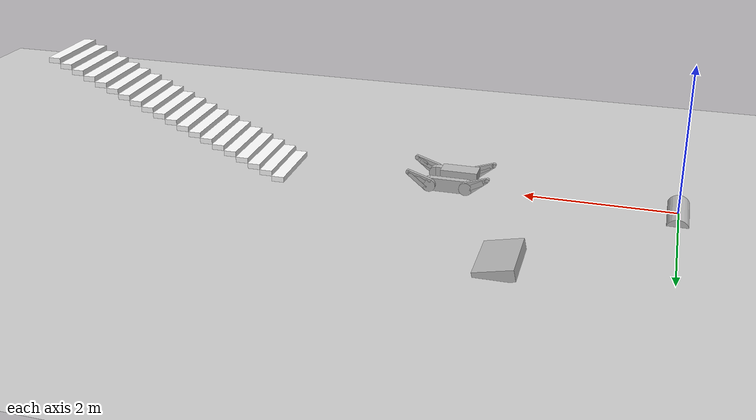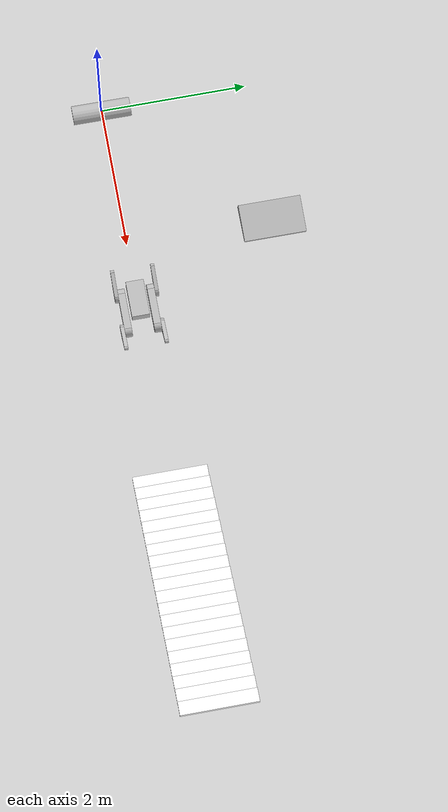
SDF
<sdf version="1.7">
 <world name="default">
  <physics name="4ms" type="ignored">
   <max_step_size>0.004</max_step_size>
   <real_time_factor>1.0</real_time_factor>
  </physics>
  <plugin name="gz::sim::systems::Physics" filename="gz-sim-physics-system"/>
  <plugin name="gz::sim::systems::UserCommands" filename="gz-sim-user-commands-system"/>
  <plugin name="gz::sim::systems::SceneBroadcaster" filename="gz-sim-scene-broadcaster-system"/>
  <scene><ambient>1 1 1 1</ambient><background>0.8 0.8 0.8 1</background><shadows>1</shadows></scene>
  <light name="sun" type="directional">
   <pose>0 0 10 0 0 0</pose>
   <diffuse>0.8 0.8 0.8 1</diffuse>
   <specular>0.8 0.8 0.8 1</specular>
   <attenuation>
    <range>1000</range>
    <constant>0.9</constant>
    <linear>0.01</linear>
    <quadratic>0.001</quadratic>
   </attenuation>
   <direction>-0.5 0.1 -0.9</direction>
  </light>
  <model name="ground_plane">
   <static>1</static>
   <link name="link">
    <collision name="collision">
     <geometry><plane><normal>0 0 1</normal><size>100 100</size></plane></geometry>
    </collision>
    <visual name="visual">
     <geometry><plane><normal>0 0 1</normal><size>100 100</size></plane></geometry>
     <material>
      <ambient>0.8 0.8 0.8 1</ambient>
      <diffuse>0.8 0.8 0.8 1</diffuse>
      <specular>0.8 0.8 0.8 1</specular>
     </material>
    </visual>
   </link>
  </model>
  <model name="simple_tracked">
   <pose>3 0 0.1 0 0 0</pose>
   <link name="base_link">
    <inertial>
     <pose>-0.122 0 0.118 1.5708 0 0</pose>
     <mass>13.14</mass>
     <inertia>
      <ixx>0.10019</ixx>
      <ixy>0</ixy>
      <ixz>0</ixz>
      <iyy>0.345043</iyy>
      <iyz>0</iyz>
      <izz>0.302044</izz>
     </inertia>
    </inertial>
    <collision name="base_link_collision">
     <pose>-0.122 0 0.118 0 0 0</pose>
     <geometry><box><size>0.50017 0.24093 0.139</size></box></geometry>
    </collision>
    <visual name="base_link_visual">
     <pose>-0.122 0 0.118 0 0 0</pose>
     <geometry><box><size>0.50017 0.24093 0.139</size></box></geometry>
    </visual>
   </link>
   <link name="left_track">
    <pose>0 0.1985 0 0 0 0</pose>
    <inertial>
     <pose>0 0 0.0141 0 0 0</pose>
     <mass>6.06</mass>
     <inertia>
      <ixx>0.002731</ixx>
      <ixy>0</ixy>
      <ixz>0</ixz>
      <iyy>0.032554</iyy>
      <iyz>1.5e-05</iyz>
      <izz>0.031391</izz>
     </inertia>
    </inertial>
    <collision name="left_track_collision">
     <pose>0 0 0.01855 1.5708 0 1.5708</pose>
     <geometry><box><size>0.09728 0.18094 0.5</size></box></geometry>
     <surface><friction><ode><mu>0.7</mu><mu2>150</mu2><fdir1>0 1 0</fdir1></ode></friction></surface>
    </collision>
    <collision name="left_track_collision_1">
     <pose>0.25 0 0.01855 1.5708 0 0</pose>
     <geometry><cylinder><length>0.09728</length><radius>0.09047</radius></cylinder></geometry>
     <surface><friction><ode><mu>0.7</mu><mu2>150</mu2><fdir1>0 1 0</fdir1></ode></friction></surface>
    </collision>
    <collision name="left_track_collision_2">
     <pose>-0.25 0 0.01855 1.5708 0 0</pose>
     <geometry><cylinder><length>0.09728</length><radius>0.09047</radius></cylinder></geometry>
     <surface><friction><ode><mu>0.7</mu><mu2>150</mu2><fdir1>0 1 0</fdir1></ode></friction></surface>
    </collision>
    <visual name="left_track_visual">
     <pose>0 0 0.01855 1.5708 0 1.5708</pose>
     <geometry><box><size>0.09728 0.18094 0.5</size></box></geometry>
    </visual>
    <visual name="left_track_visual_1">
     <pose>0.25 0 0.01855 1.5708 0 0</pose>
     <geometry><cylinder><length>0.09728</length><radius>0.09047</radius></cylinder></geometry>
    </visual>
    <visual name="left_track_visual_2">
     <pose>-0.25 0 0.01855 1.5708 0 0</pose>
     <geometry><cylinder><length>0.09728</length><radius>0.09047</radius></cylinder></geometry>
    </visual>
   </link>
   <joint name="left_track_j" type="fixed"><child>left_track</child><parent>base_link</parent></joint>
   <link name="right_track">
    <pose>0 -0.1985 0 0 0 0</pose>
    <inertial>
     <pose>0 0 0.0141 0 0 0</pose>
     <mass>6.06</mass>
     <inertia>
      <ixx>0.002731</ixx>
      <ixy>0</ixy>
      <ixz>0</ixz>
      <iyy>0.032554</iyy>
      <iyz>1.5e-05</iyz>
      <izz>0.031391</izz>
     </inertia>
    </inertial>
    <collision name="right_track_collision">
     <pose>0 0 0.01855 1.5708 0 1.5708</pose>
     <geometry><box><size>0.09728 0.18094 0.5</size></box></geometry>
     <surface><friction><ode><mu>0.7</mu><mu2>150</mu2><fdir1>0 1 0</fdir1></ode></friction></surface>
    </collision>
    <collision name="right_track_collision_1">
     <pose>0.25 0 0.01855 1.5708 0 0</pose>
     <geometry><cylinder><length>0.09728</length><radius>0.09047</radius></cylinder></geometry>
     <surface><friction><ode><mu>0.7</mu><mu2>150</mu2><fdir1>0 1 0</fdir1></ode></friction></surface>
    </collision>
    <collision name="right_track_collision_2">
     <pose>-0.25 0 0.01855 1.5708 0 0</pose>
     <geometry><cylinder><length>0.09728</length><radius>0.09047</radius></cylinder></geometry>
     <surface><friction><ode><mu>0.7</mu><mu2>150</mu2><fdir1>0 1 0</fdir1></ode></friction></surface>
    </collision>
    <visual name="right_track_visual">
     <pose>0 0 0.01855 1.5708 0 1.5708</pose>
     <geometry><box><size>0.09728 0.18094 0.5</size></box></geometry>
    </visual>
    <visual name="right_track_visual_1">
     <pose>0.25 0 0.01855 1.5708 0 0</pose>
     <geometry><cylinder><length>0.09728</length><radius>0.09047</radius></cylinder></geometry>
    </visual>
    <visual name="right_track_visual_2">
     <pose>-0.25 0 0.01855 1.5708 0 0</pose>
     <geometry><cylinder><length>0.09728</length><radius>0.09047</radius></cylinder></geometry>
    </visual>
   </link>
   <joint name="right_track_j" type="fixed"><child>right_track</child><parent>base_link</parent></joint>
   <link name="front_left_flipper">
    <pose>0.25 0.272 0.0195 0 -0.5 0</pose>
    <inertial>
     <pose>0.08 0 0 0 0 0</pose>
     <mass>0.75</mass>
     <inertia>
      <ixx>0.0017491</ixx>
      <ixy>2.8512e-07</ixy>
      <ixz>0.0018277</ixz>
      <iyy>0.012277</iyy>
      <iyz>-3.6288e-07</iyz>
      <izz>0.010941</izz>
     </inertia>
    </inertial>
    <collision name="front_left_flipper_collision_large_wheel_collision">
     <pose>0 0 0 1.5708 0 0</pose>
     <geometry><cylinder><length>0.04981</length><radius>0.089</radius></cylinder></geometry>
     <surface><friction><ode><mu>0.7</mu><mu2>150</mu2><fdir1>0 1 0</fdir1></ode></friction></surface>
     <max_contacts>20</max_contacts>
    </collision>
    <collision name="front_left_flipper_collision_small_wheel_collision_1">
     <pose>0.33 0 0 1.5708 0 0</pose>
     <geometry><cylinder><length>0.04981</length><radius>0.029</radius></cylinder></geometry>
     <surface><friction><ode><mu>0.7</mu><mu2>150</mu2><fdir1>0 1 0</fdir1></ode></friction></surface>
     <max_contacts>20</max_contacts>
    </collision>
    <collision name="front_left_flipper_collision_top_bar_collision_2">
     <pose>0.165 0 0.0325 0 0.184162 0</pose>
     <geometry><box><size>0.33 0.04981 0.055</size></box></geometry>
     <surface><friction><ode><mu>0.7</mu><mu2>150</mu2><fdir1>0 1 0</fdir1></ode></friction></surface>
     <max_contacts>20</max_contacts>
    </collision>
    <collision name="front_left_flipper_collision_bottom_bar_collision_3">
     <pose>0.165 0 -0.0325 0 -0.184162 0</pose>
     <geometry><box><size>0.33 0.04981 0.055</size></box></geometry>
     <surface><friction><ode><mu>0.7</mu><mu2>150</mu2><fdir1>0 1 0</fdir1></ode></friction></surface>
     <max_contacts>20</max_contacts>
    </collision>
    <collision name="front_left_flipper_collision_middle_bar_collision_4">
     <pose>0.166 0 0.004 0 -0.02 0</pose>
     <geometry><box><size>0.2 0.04981 0.07</size></box></geometry>
     <surface><friction><ode><mu>0.7</mu><mu2>150</mu2><fdir1>0 1 0</fdir1></ode></friction></surface>
     <max_contacts>20</max_contacts>
    </collision>
    <visual name="front_left_flipper_visual_large_wheel_visual">
     <pose>0 0 0 1.5708 0 0</pose>
     <geometry><cylinder><length>0.04981</length><radius>0.089</radius></cylinder></geometry>
    </visual>
    <visual name="front_left_flipper_visual_small_wheel_visual_1">
     <pose>0.33 0 0 1.5708 0 0</pose>
     <geometry><cylinder><length>0.04981</length><radius>0.029</radius></cylinder></geometry>
    </visual>
    <visual name="front_left_flipper_visual_top_bar_visual_2">
     <pose>0.165 0 0.0325 0 0.184162 0</pose>
     <geometry><box><size>0.33 0.04981 0.055</size></box></geometry>
    </visual>
    <visual name="front_left_flipper_visual_bottom_bar_visual_3">
     <pose>0.165 0 -0.0325 0 -0.184162 0</pose>
     <geometry><box><size>0.33 0.04981 0.055</size></box></geometry>
    </visual>
    <visual name="front_left_flipper_visual_middle_bar_visual_4">
     <pose>0.166 0 0.004 0 -0.02 0</pose>
     <geometry><box><size>0.2 0.04981 0.07</size></box></geometry>
    </visual>
    <self_collide>1</self_collide>
   </link>
   <joint name="front_left_flipper_j" type="revolute">
    <child>front_left_flipper</child>
    <parent>left_track</parent>
    <axis>
     <xyz expressed_in="__model__">0 1 0</xyz>
     <limit><lower>0</lower><upper>0</upper></limit>
     <dynamics><spring_reference>0</spring_reference><spring_stiffness>0</spring_stiffness></dynamics>
    </axis>
    <physics>
     <ode>
      <implicit_spring_damper>1</implicit_spring_damper>
      <cfm_damping>1</cfm_damping>
      <limit><cfm>0</cfm><erp>0.2</erp></limit>
     </ode>
    </physics>
   </joint>
   <link name="rear_left_flipper">
    <pose>-0.25 0.272 0.0195 3.14159 -0.5 3.14159</pose>
    <inertial>
     <pose>0.08 0 0 0 0 0</pose>
     <mass>0.75</mass>
     <inertia>
      <ixx>0.0017491</ixx>
      <ixy>2.8512e-07</ixy>
      <ixz>0.0018277</ixz>
      <iyy>0.012277</iyy>
      <iyz>-3.6288e-07</iyz>
      <izz>0.010941</izz>
     </inertia>
    </inertial>
    <collision name="rear_left_flipper_collision_large_wheel_collision">
     <pose>0 0 0 1.5708 0 0</pose>
     <geometry><cylinder><length>0.04981</length><radius>0.089</radius></cylinder></geometry>
     <surface><friction><ode><mu>0.7</mu><mu2>150</mu2><fdir1>0 1 0</fdir1></ode></friction></surface>
     <max_contacts>20</max_contacts>
    </collision>
    <collision name="rear_left_flipper_collision_small_wheel_collision_1">
     <pose>0.33 0 0 1.5708 0 0</pose>
     <geometry><cylinder><length>0.04981</length><radius>0.029</radius></cylinder></geometry>
     <surface><friction><ode><mu>0.7</mu><mu2>150</mu2><fdir1>0 1 0</fdir1></ode></friction></surface>
     <max_contacts>20</max_contacts>
    </collision>
    <collision name="rear_left_flipper_collision_top_bar_collision_2">
     <pose>0.165 0 0.0325 0 0.184162 0</pose>
     <geometry><box><size>0.33 0.04981 0.055</size></box></geometry>
     <surface><friction><ode><mu>0.7</mu><mu2>150</mu2><fdir1>0 1 0</fdir1></ode></friction></surface>
     <max_contacts>20</max_contacts>
    </collision>
    <collision name="rear_left_flipper_collision_bottom_bar_collision_3">
     <pose>0.165 0 -0.0325 0 -0.184162 0</pose>
     <geometry><box><size>0.33 0.04981 0.055</size></box></geometry>
     <surface><friction><ode><mu>0.7</mu><mu2>150</mu2><fdir1>0 1 0</fdir1></ode></friction></surface>
     <max_contacts>20</max_contacts>
    </collision>
    <collision name="rear_left_flipper_collision_middle_bar_collision_4">
     <pose>0.166 0 0.004 0 -0.02 0</pose>
     <geometry><box><size>0.2 0.04981 0.07</size></box></geometry>
     <surface><friction><ode><mu>0.7</mu><mu2>150</mu2><fdir1>0 1 0</fdir1></ode></friction></surface>
     <max_contacts>20</max_contacts>
    </collision>
    <visual name="rear_left_flipper_visual_large_wheel_visual">
     <pose>0 0 0 1.5708 0 0</pose>
     <geometry><cylinder><length>0.04981</length><radius>0.089</radius></cylinder></geometry>
    </visual>
    <visual name="rear_left_flipper_visual_small_wheel_visual_1">
     <pose>0.33 0 0 1.5708 0 0</pose>
     <geometry><cylinder><length>0.04981</length><radius>0.029</radius></cylinder></geometry>
    </visual>
    <visual name="rear_left_flipper_visual_top_bar_visual_2">
     <pose>0.165 0 0.0325 0 0.184162 0</pose>
     <geometry><box><size>0.33 0.04981 0.055</size></box></geometry>
    </visual>
    <visual name="rear_left_flipper_visual_bottom_bar_visual_3">
     <pose>0.165 0 -0.0325 0 -0.184162 0</pose>
     <geometry><box><size>0.33 0.04981 0.055</size></box></geometry>
    </visual>
    <visual name="rear_left_flipper_visual_middle_bar_visual_4">
     <pose>0.166 0 0.004 0 -0.02 0</pose>
     <geometry><box><size>0.2 0.04981 0.07</size></box></geometry>
    </visual>
    <self_collide>1</self_collide>
   </link>
   <joint name="rear_left_flipper_j" type="revolute">
    <child>rear_left_flipper</child>
    <parent>left_track</parent>
    <axis>
     <xyz expressed_in="__model__">0 1 0</xyz>
     <limit><lower>0</lower><upper>0</upper></limit>
     <dynamics><spring_reference>0</spring_reference><spring_stiffness>0</spring_stiffness></dynamics>
    </axis>
    <physics>
     <ode>
      <implicit_spring_damper>1</implicit_spring_damper>
      <cfm_damping>1</cfm_damping>
      <limit><cfm>0</cfm><erp>0.2</erp></limit>
     </ode>
    </physics>
   </joint>
   <link name="front_right_flipper">
    <pose>0.25 -0.272 0.0195 3.14159 0.5 3.14159</pose>
    <inertial>
     <pose>-0.08 0 0 0 0 0</pose>
     <mass>0.75</mass>
     <inertia>
      <ixx>0.0017491</ixx>
      <ixy>2.8512e-07</ixy>
      <ixz>0.0018277</ixz>
      <iyy>0.012277</iyy>
      <iyz>-3.6288e-07</iyz>
      <izz>0.010941</izz>
     </inertia>
    </inertial>
    <collision name="front_right_flipper_collision_large_wheel_collision">
     <pose>0 0 0 1.5708 0 0</pose>
     <geometry><cylinder><length>0.04981</length><radius>0.089</radius></cylinder></geometry>
     <surface><friction><ode><mu>0.7</mu><mu2>150</mu2><fdir1>0 1 0</fdir1></ode></friction></surface>
     <max_contacts>20</max_contacts>
    </collision>
    <collision name="front_right_flipper_collision_small_wheel_collision_1">
     <pose>-0.33 0 0 1.5708 0 0</pose>
     <geometry><cylinder><length>0.04981</length><radius>0.029</radius></cylinder></geometry>
     <surface><friction><ode><mu>0.7</mu><mu2>150</mu2><fdir1>0 1 0</fdir1></ode></friction></surface>
     <max_contacts>20</max_contacts>
    </collision>
    <collision name="front_right_flipper_collision_top_bar_collision_2">
     <pose>-0.165 0 0.0325 0 0.184162 -3.14159</pose>
     <geometry><box><size>0.33 0.04981 0.055</size></box></geometry>
     <surface><friction><ode><mu>0.7</mu><mu2>150</mu2><fdir1>0 1 0</fdir1></ode></friction></surface>
     <max_contacts>20</max_contacts>
    </collision>
    <collision name="front_right_flipper_collision_bottom_bar_collision_3">
     <pose>-0.165 0 -0.0325 0 -0.184162 -3.14159</pose>
     <geometry><box><size>0.33 0.04981 0.055</size></box></geometry>
     <surface><friction><ode><mu>0.7</mu><mu2>150</mu2><fdir1>0 1 0</fdir1></ode></friction></surface>
     <max_contacts>20</max_contacts>
    </collision>
    <collision name="front_right_flipper_collision_middle_bar_collision_4">
     <pose>-0.166 0 0.004 0 -0.02 -3.14159</pose>
     <geometry><box><size>0.2 0.04981 0.07</size></box></geometry>
     <surface><friction><ode><mu>0.7</mu><mu2>150</mu2><fdir1>0 1 0</fdir1></ode></friction></surface>
     <max_contacts>20</max_contacts>
    </collision>
    <visual name="front_right_flipper_visual_large_wheel_visual">
     <pose>0 0 0 1.5708 0 0</pose>
     <geometry><cylinder><length>0.04981</length><radius>0.089</radius></cylinder></geometry>
    </visual>
    <visual name="front_right_flipper_visual_small_wheel_visual_1">
     <pose>-0.33 0 0 1.5708 0 0</pose>
     <geometry><cylinder><length>0.04981</length><radius>0.029</radius></cylinder></geometry>
    </visual>
    <visual name="front_right_flipper_visual_top_bar_visual_2">
     <pose>-0.165 0 0.0325 0 0.184162 -3.14159</pose>
     <geometry><box><size>0.33 0.04981 0.055</size></box></geometry>
    </visual>
    <visual name="front_right_flipper_visual_bottom_bar_visual_3">
     <pose>-0.165 0 -0.0325 0 -0.184162 -3.14159</pose>
     <geometry><box><size>0.33 0.04981 0.055</size></box></geometry>
    </visual>
    <visual name="front_right_flipper_visual_middle_bar_visual_4">
     <pose>-0.166 0 0.004 0 -0.02 -3.14159</pose>
     <geometry><box><size>0.2 0.04981 0.07</size></box></geometry>
    </visual>
    <self_collide>1</self_collide>
   </link>
   <joint name="front_right_flipper_j" type="revolute">
    <child>front_right_flipper</child>
    <parent>right_track</parent>
    <axis>
     <xyz expressed_in="__model__">0 1 0</xyz>
     <limit><lower>0</lower><upper>0</upper></limit>
     <dynamics><spring_reference>0</spring_reference><spring_stiffness>0</spring_stiffness></dynamics>
    </axis>
    <physics>
     <ode>
      <implicit_spring_damper>1</implicit_spring_damper>
      <cfm_damping>1</cfm_damping>
      <limit><cfm>0</cfm><erp>0.2</erp></limit>
     </ode>
    </physics>
   </joint>
   <link name="rear_right_flipper">
    <pose>-0.25 -0.272 0.0195 0 0.5 0</pose>
    <inertial>
     <pose>-0.08 0 0 0 0 0</pose>
     <mass>0.75</mass>
     <inertia>
      <ixx>0.0017491</ixx>
      <ixy>2.8512e-07</ixy>
      <ixz>0.0018277</ixz>
      <iyy>0.012277</iyy>
      <iyz>-3.6288e-07</iyz>
      <izz>0.010941</izz>
     </inertia>
    </inertial>
    <collision name="rear_right_flipper_collision_large_wheel_collision">
     <pose>0 0 0 1.5708 0 0</pose>
     <geometry><cylinder><length>0.04981</length><radius>0.089</radius></cylinder></geometry>
     <surface><friction><ode><mu>0.7</mu><mu2>150</mu2><fdir1>0 1 0</fdir1></ode></friction></surface>
     <max_contacts>20</max_contacts>
    </collision>
    <collision name="rear_right_flipper_collision_small_wheel_collision_1">
     <pose>-0.33 0 0 1.5708 0 0</pose>
     <geometry><cylinder><length>0.04981</length><radius>0.029</radius></cylinder></geometry>
     <surface><friction><ode><mu>0.7</mu><mu2>150</mu2><fdir1>0 1 0</fdir1></ode></friction></surface>
     <max_contacts>20</max_contacts>
    </collision>
    <collision name="rear_right_flipper_collision_top_bar_collision_2">
     <pose>-0.165 0 0.0325 0 0.184162 -3.14159</pose>
     <geometry><box><size>0.33 0.04981 0.055</size></box></geometry>
     <surface><friction><ode><mu>0.7</mu><mu2>150</mu2><fdir1>0 1 0</fdir1></ode></friction></surface>
     <max_contacts>20</max_contacts>
    </collision>
    <collision name="rear_right_flipper_collision_bottom_bar_collision_3">
     <pose>-0.165 0 -0.0325 0 -0.184162 -3.14159</pose>
     <geometry><box><size>0.33 0.04981 0.055</size></box></geometry>
     <surface><friction><ode><mu>0.7</mu><mu2>150</mu2><fdir1>0 1 0</fdir1></ode></friction></surface>
     <max_contacts>20</max_contacts>
    </collision>
    <collision name="rear_right_flipper_collision_middle_bar_collision_4">
     <pose>-0.166 0 0.004 0 -0.02 -3.14159</pose>
     <geometry><box><size>0.2 0.04981 0.07</size></box></geometry>
     <surface><friction><ode><mu>0.7</mu><mu2>150</mu2><fdir1>0 1 0</fdir1></ode></friction></surface>
     <max_contacts>20</max_contacts>
    </collision>
    <visual name="rear_right_flipper_visual_large_wheel_visual">
     <pose>0 0 0 1.5708 0 0</pose>
     <geometry><cylinder><length>0.04981</length><radius>0.089</radius></cylinder></geometry>
    </visual>
    <visual name="rear_right_flipper_visual_small_wheel_visual_1">
     <pose>-0.33 0 0 1.5708 0 0</pose>
     <geometry><cylinder><length>0.04981</length><radius>0.029</radius></cylinder></geometry>
    </visual>
    <visual name="rear_right_flipper_visual_top_bar_visual_2">
     <pose>-0.165 0 0.0325 0 0.184162 -3.14159</pose>
     <geometry><box><size>0.33 0.04981 0.055</size></box></geometry>
    </visual>
    <visual name="rear_right_flipper_visual_bottom_bar_visual_3">
     <pose>-0.165 0 -0.0325 0 -0.184162 -3.14159</pose>
     <geometry><box><size>0.33 0.04981 0.055</size></box></geometry>
    </visual>
    <visual name="rear_right_flipper_visual_middle_bar_visual_4">
     <pose>-0.166 0 0.004 0 -0.02 -3.14159</pose>
     <geometry><box><size>0.2 0.04981 0.07</size></box></geometry>
    </visual>
    <self_collide>1</self_collide>
   </link>
   <joint name="rear_right_flipper_j" type="revolute">
    <child>rear_right_flipper</child>
    <parent>right_track</parent>
    <axis>
     <xyz expressed_in="__model__">0 1 0</xyz>
     <limit><lower>0</lower><upper>0</upper></limit>
     <dynamics><spring_reference>0</spring_reference><spring_stiffness>0</spring_stiffness></dynamics>
    </axis>
    <physics>
     <ode>
      <implicit_spring_damper>1</implicit_spring_damper>
      <cfm_damping>1</cfm_damping>
      <limit><cfm>0</cfm><erp>0.2</erp></limit>
     </ode>
    </physics>
   </joint>
   <plugin name="gz::sim::systems::TrackedVehicle" filename="gz-sim-tracked-vehicle-system">
    <left_track><link>left_track</link></left_track>
    <left_track><link>front_left_flipper</link></left_track>
    <left_track><link>rear_left_flipper</link></left_track>
    <right_track><link>right_track</link></right_track>
    <right_track><link>front_right_flipper</link></right_track>
    <right_track><link>rear_right_flipper</link></right_track>
    <tracks_separation>0.4</tracks_separation>
    <track_height>0.18094</track_height>
    <steering_efficiency>0.5</steering_efficiency>
   </plugin>
   <plugin name="gz::sim::systems::TrackController" filename="gz-sim-track-controller-system">
    <link>left_track</link>
    <min_velocity>-1.0</min_velocity>
    <max_velocity>1.0</max_velocity>
   </plugin>
   <plugin name="gz::sim::systems::TrackController" filename="gz-sim-track-controller-system">
    <link>right_track</link>
    <min_velocity>-1.0</min_velocity>
    <max_velocity>1.0</max_velocity>
   </plugin>
   <plugin name="gz::sim::systems::TrackController" filename="gz-sim-track-controller-system">
    <link>front_left_flipper</link>
    <min_velocity>-1.0</min_velocity>
    <max_velocity>1.0</max_velocity>
   </plugin>
   <plugin name="gz::sim::systems::TrackController" filename="gz-sim-track-controller-system">
    <link>rear_left_flipper</link>
    <min_velocity>-1.0</min_velocity>
    <max_velocity>1.0</max_velocity>
   </plugin>
   <plugin name="gz::sim::systems::TrackController" filename="gz-sim-track-controller-system">
    <link>front_right_flipper</link>
    <min_velocity>-1.0</min_velocity>
    <max_velocity>1.0</max_velocity>
   </plugin>
   <plugin name="gz::sim::systems::TrackController" filename="gz-sim-track-controller-system">
    <link>rear_right_flipper</link>
    <min_velocity>-1.0</min_velocity>
    <max_velocity>1.0</max_velocity>
   </plugin>
   <plugin filename="gz-sim-triggered-publisher-system" name="gz::sim::systems::TriggeredPublisher">
    <input type="gz.msgs.Int32" topic="/keyboard/keypress"><match field="data">87</match></input>
    <output type="gz.msgs.Twist" topic="/model/simple_tracked/cmd_vel">linear: {x: 1.0}, angular: {z: 0.0}</output>
   </plugin>
   <plugin filename="gz-sim-triggered-publisher-system" name="gz::sim::systems::TriggeredPublisher">
    <input type="gz.msgs.Int32" topic="/keyboard/keypress"><match field="data">88</match></input>
    <output type="gz.msgs.Twist" topic="/model/simple_tracked/cmd_vel">linear: {x: -1.0}, angular: {z: 0.0}</output>
   </plugin>
   <plugin filename="gz-sim-triggered-publisher-system" name="gz::sim::systems::TriggeredPublisher">
    <input type="gz.msgs.Int32" topic="/keyboard/keypress"><match field="data">83</match></input>
    <output type="gz.msgs.Twist" topic="/model/simple_tracked/cmd_vel">linear: {x: 0.0}, angular: {z: 0.0}</output>
   </plugin>
   <plugin filename="gz-sim-triggered-publisher-system" name="gz::sim::systems::TriggeredPublisher">
    <input type="gz.msgs.Int32" topic="/keyboard/keypress"><match field="data">65</match></input>
    <output type="gz.msgs.Twist" topic="/model/simple_tracked/cmd_vel">linear: {x: 0.0}, angular: {z: 1.0}</output>
   </plugin>
   <plugin filename="gz-sim-triggered-publisher-system" name="gz::sim::systems::TriggeredPublisher">
    <input type="gz.msgs.Int32" topic="/keyboard/keypress"><match field="data">68</match></input>
    <output type="gz.msgs.Twist" topic="/model/simple_tracked/cmd_vel">linear: {x: 0.0}, angular: {z: -1.0}</output>
   </plugin>
   <plugin filename="gz-sim-triggered-publisher-system" name="gz::sim::systems::TriggeredPublisher">
    <input type="gz.msgs.Int32" topic="/keyboard/keypress"><match field="data">81</match></input>
    <output type="gz.msgs.Twist" topic="/model/simple_tracked/cmd_vel">linear: {x: 1.0}, angular: {z: 1.0}</output>
   </plugin>
   <plugin filename="gz-sim-triggered-publisher-system" name="gz::sim::systems::TriggeredPublisher">
    <input type="gz.msgs.Int32" topic="/keyboard/keypress"><match field="data">69</match></input>
    <output type="gz.msgs.Twist" topic="/model/simple_tracked/cmd_vel">linear: {x: 1.0}, angular: {z: -1.0}</output>
   </plugin>
   <plugin filename="gz-sim-triggered-publisher-system" name="gz::sim::systems::TriggeredPublisher">
    <input type="gz.msgs.Int32" topic="/keyboard/keypress"><match field="data">90</match></input>
    <output type="gz.msgs.Twist" topic="/model/simple_tracked/cmd_vel">linear: {x: -1.0}, angular: {z: 1.0}</output>
   </plugin>
   <plugin filename="gz-sim-triggered-publisher-system" name="gz::sim::systems::TriggeredPublisher">
    <input type="gz.msgs.Int32" topic="/keyboard/keypress"><match field="data">67</match></input>
    <output type="gz.msgs.Twist" topic="/model/simple_tracked/cmd_vel">linear: {x: -1.0}, angular: {z: -1.0}</output>
   </plugin>
  </model>
  <model name="stairs_very_simple">
   <pose>7 0 0 0 0 1.5708</pose>
   <link name="Stairs_3">
    <visual name="Stairs_3_Visual_0">
     <pose>0 1.6625 0.0375 0 0 0</pose>
     <geometry><box><size>1 0.175 0.075</size></box></geometry>
     <material><ambient>1 1 1 1</ambient></material>
     <meta><layer>0</layer></meta>
    </visual>
    <collision name="Stairs_3_Collision_0">
     <geometry><box><size>1 0.175 0.075</size></box></geometry>
     <pose>0 1.6625 0.0375 0 0 0</pose>
    </collision>
    <visual name="Stairs_3_Visual_1">
     <pose>0 1.4875 0.1125 0 0 0</pose>
     <geometry><box><size>1 0.175 0.075</size></box></geometry>
     <material><ambient>1 1 1 1</ambient></material>
     <meta><layer>0</layer></meta>
    </visual>
    <collision name="Stairs_3_Collision_1">
     <geometry><box><size>1 0.175 0.075</size></box></geometry>
     <pose>0 1.4875 0.1125 0 0 0</pose>
    </collision>
    <visual name="Stairs_3_Visual_2">
     <pose>0 1.3125 0.1875 0 0 0</pose>
     <geometry><box><size>1 0.175 0.075</size></box></geometry>
     <material><ambient>1 1 1 1</ambient></material>
     <meta><layer>0</layer></meta>
    </visual>
    <collision name="Stairs_3_Collision_2">
     <geometry><box><size>1 0.175 0.075</size></box></geometry>
     <pose>0 1.3125 0.1875 0 0 0</pose>
    </collision>
    <visual name="Stairs_3_Visual_3">
     <pose>0 1.1375 0.2625 0 0 0</pose>
     <geometry><box><size>1 0.175 0.075</size></box></geometry>
     <material><ambient>1 1 1 1</ambient></material>
     <meta><layer>0</layer></meta>
    </visual>
    <collision name="Stairs_3_Collision_3">
     <geometry><box><size>1 0.175 0.075</size></box></geometry>
     <pose>0 1.1375 0.2625 0 0 0</pose>
    </collision>
    <visual name="Stairs_3_Visual_4">
     <pose>0 0.9625 0.3375 0 0 0</pose>
     <geometry><box><size>1 0.175 0.075</size></box></geometry>
     <material><ambient>1 1 1 1</ambient></material>
     <meta><layer>0</layer></meta>
    </visual>
    <collision name="Stairs_3_Collision_4">
     <geometry><box><size>1 0.175 0.075</size></box></geometry>
     <pose>0 0.9625 0.3375 0 0 0</pose>
    </collision>
    <visual name="Stairs_3_Visual_5">
     <pose>0 0.7875 0.4125 0 0 0</pose>
     <geometry><box><size>1 0.175 0.075</size></box></geometry>
     <material><ambient>1 1 1 1</ambient></material>
     <meta><layer>0</layer></meta>
    </visual>
    <collision name="Stairs_3_Collision_5">
     <geometry><box><size>1 0.175 0.075</size></box></geometry>
     <pose>0 0.7875 0.4125 0 0 0</pose>
    </collision>
    <visual name="Stairs_3_Visual_6">
     <pose>0 0.6125 0.4875 0 0 0</pose>
     <geometry><box><size>1 0.175 0.075</size></box></geometry>
     <material><ambient>1 1 1 1</ambient></material>
     <meta><layer>0</layer></meta>
    </visual>
    <collision name="Stairs_3_Collision_6">
     <geometry><box><size>1 0.175 0.075</size></box></geometry>
     <pose>0 0.6125 0.4875 0 0 0</pose>
    </collision>
    <visual name="Stairs_3_Visual_7">
     <pose>0 0.4375 0.5625 0 0 0</pose>
     <geometry><box><size>1 0.175 0.075</size></box></geometry>
     <material><ambient>1 1 1 1</ambient></material>
     <meta><layer>0</layer></meta>
    </visual>
    <collision name="Stairs_3_Collision_7">
     <geometry><box><size>1 0.175 0.075</size></box></geometry>
     <pose>0 0.4375 0.5625 0 0 0</pose>
    </collision>
    <visual name="Stairs_3_Visual_8">
     <pose>0 0.2625 0.6375 0 0 0</pose>
     <geometry><box><size>1 0.175 0.075</size></box></geometry>
     <material><ambient>1 1 1 1</ambient></material>
     <meta><layer>0</layer></meta>
    </visual>
    <collision name="Stairs_3_Collision_8">
     <geometry><box><size>1 0.175 0.075</size></box></geometry>
     <pose>0 0.2625 0.6375 0 0 0</pose>
    </collision>
    <visual name="Stairs_3_Visual_9">
     <pose>0 0.0875 0.7125 0 0 0</pose>
     <geometry><box><size>1 0.175 0.075</size></box></geometry>
     <material><ambient>1 1 1 1</ambient></material>
     <meta><layer>0</layer></meta>
    </visual>
    <collision name="Stairs_3_Collision_9">
     <geometry><box><size>1 0.175 0.075</size></box></geometry>
     <pose>0 0.0875 0.7125 0 0 0</pose>
    </collision>
    <visual name="Stairs_3_Visual_10">
     <pose>0 -0.0875 0.7875 0 0 0</pose>
     <geometry><box><size>1 0.175 0.075</size></box></geometry>
     <material><ambient>1 1 1 1</ambient></material>
     <meta><layer>0</layer></meta>
    </visual>
    <collision name="Stairs_3_Collision_10">
     <geometry><box><size>1 0.175 0.075</size></box></geometry>
     <pose>0 -0.0875 0.7875 0 0 0</pose>
    </collision>
    <visual name="Stairs_3_Visual_11">
     <pose>0 -0.2625 0.8625 0 0 0</pose>
     <geometry><box><size>1 0.175 0.075</size></box></geometry>
     <material><ambient>1 1 1 1</ambient></material>
     <meta><layer>0</layer></meta>
    </visual>
    <collision name="Stairs_3_Collision_11">
     <geometry><box><size>1 0.175 0.075</size></box></geometry>
     <pose>0 -0.2625 0.8625 0 0 0</pose>
    </collision>
    <visual name="Stairs_3_Visual_12">
     <pose>0 -0.4375 0.9375 0 0 0</pose>
     <geometry><box><size>1 0.175 0.075</size></box></geometry>
     <material><ambient>1 1 1 1</ambient></material>
     <meta><layer>0</layer></meta>
    </visual>
    <collision name="Stairs_3_Collision_12">
     <geometry><box><size>1 0.175 0.075</size></box></geometry>
     <pose>0 -0.4375 0.9375 0 0 0</pose>
    </collision>
    <visual name="Stairs_3_Visual_13">
     <pose>0 -0.6125 1.0125 0 0 0</pose>
     <geometry><box><size>1 0.175 0.075</size></box></geometry>
     <material><ambient>1 1 1 1</ambient></material>
     <meta><layer>0</layer></meta>
    </visual>
    <collision name="Stairs_3_Collision_13">
     <geometry><box><size>1 0.175 0.075</size></box></geometry>
     <pose>0 -0.6125 1.0125 0 0 0</pose>
    </collision>
    <visual name="Stairs_3_Visual_14">
     <pose>0 -0.7875 1.0875 0 0 0</pose>
     <geometry><box><size>1 0.175 0.075</size></box></geometry>
     <material><ambient>1 1 1 1</ambient></material>
     <meta><layer>0</layer></meta>
    </visual>
    <collision name="Stairs_3_Collision_14">
     <geometry><box><size>1 0.175 0.075</size></box></geometry>
     <pose>0 -0.7875 1.0875 0 0 0</pose>
    </collision>
    <visual name="Stairs_3_Visual_15">
     <pose>0 -0.9625 1.1625 0 0 0</pose>
     <geometry><box><size>1 0.175 0.075</size></box></geometry>
     <material><ambient>1 1 1 1</ambient></material>
     <meta><layer>0</layer></meta>
    </visual>
    <collision name="Stairs_3_Collision_15">
     <geometry><box><size>1 0.175 0.075</size></box></geometry>
     <pose>0 -0.9625 1.1625 0 0 0</pose>
    </collision>
    <visual name="Stairs_3_Visual_16">
     <pose>0 -1.1375 1.2375 0 0 0</pose>
     <geometry><box><size>1 0.175 0.075</size></box></geometry>
     <material><ambient>1 1 1 1</ambient></material>
     <meta><layer>0</layer></meta>
    </visual>
    <collision name="Stairs_3_Collision_16">
     <geometry><box><size>1 0.175 0.075</size></box></geometry>
     <pose>0 -1.1375 1.2375 0 0 0</pose>
    </collision>
    <visual name="Stairs_3_Visual_17">
     <pose>0 -1.3125 1.3125 0 0 0</pose>
     <geometry><box><size>1 0.175 0.075</size></box></geometry>
     <material><ambient>1 1 1 1</ambient></material>
     <meta><layer>0</layer></meta>
    </visual>
    <collision name="Stairs_3_Collision_17">
     <geometry><box><size>1 0.175 0.075</size></box></geometry>
     <pose>0 -1.3125 1.3125 0 0 0</pose>
    </collision>
    <visual name="Stairs_3_Visual_18">
     <pose>0 -1.4875 1.3875 0 0 0</pose>
     <geometry><box><size>1 0.175 0.075</size></box></geometry>
     <material><ambient>1 1 1 1</ambient></material>
     <meta><layer>0</layer></meta>
    </visual>
    <collision name="Stairs_3_Collision_18">
     <geometry><box><size>1 0.175 0.075</size></box></geometry>
     <pose>0 -1.4875 1.3875 0 0 0</pose>
    </collision>
    <visual name="Stairs_3_Visual_19">
     <pose>0 -1.6625 1.4625 0 0 0</pose>
     <geometry><box><size>1 0.175 0.075</size></box></geometry>
     <material><ambient>1 1 1 1</ambient></material>
     <meta><layer>0</layer></meta>
    </visual>
    <collision name="Stairs_3_Collision_19">
     <geometry><box><size>1 0.175 0.075</size></box></geometry>
     <pose>0 -1.6625 1.4625 0 0 0</pose>
    </collision>
   </link>
   <static>1</static>
  </model>
  <model name="cylinder_obstacle">
   <static>1</static>
   <pose>0 0 -0.06 0 0 1.5708</pose>
   <link name="cylinder">
    <collision name="cylinder_collision">
     <pose>0 0 0 0 1.5708 0</pose>
     <geometry><cylinder><radius>0.15</radius><length>0.8</length></cylinder></geometry>
     <surface><friction><ode><mu>1</mu></ode></friction></surface>
    </collision>
    <visual name="cylinder_visual">
     <pose>0 0 0 0 1.5708 0</pose>
     <geometry><cylinder><radius>0.15</radius><length>0.8</length></cylinder></geometry>
    </visual>
   </link>
  </model>
  <model name="box_obstacle">
   <static>1</static>
   <pose>2 2 0.028 1.7821 0 1.5708</pose>
   <link name="box">
    <collision name="box_collision">
     <geometry><box><size>0.85 0.15 0.5</size></box></geometry>
     <surface><friction><ode><mu>1</mu></ode></friction></surface>
    </collision>
    <visual name="box_visual"><geometry><box><size>0.85 0.15 0.5</size></box></geometry></visual>
   </link>
  </model>
  <gravity>0 0 -9.8</gravity>
  <magnetic_field>6e-06 2.3e-05 -4.2e-05</magnetic_field>
  <atmosphere type="adiabatic"/>
 </world>
</sdf>
